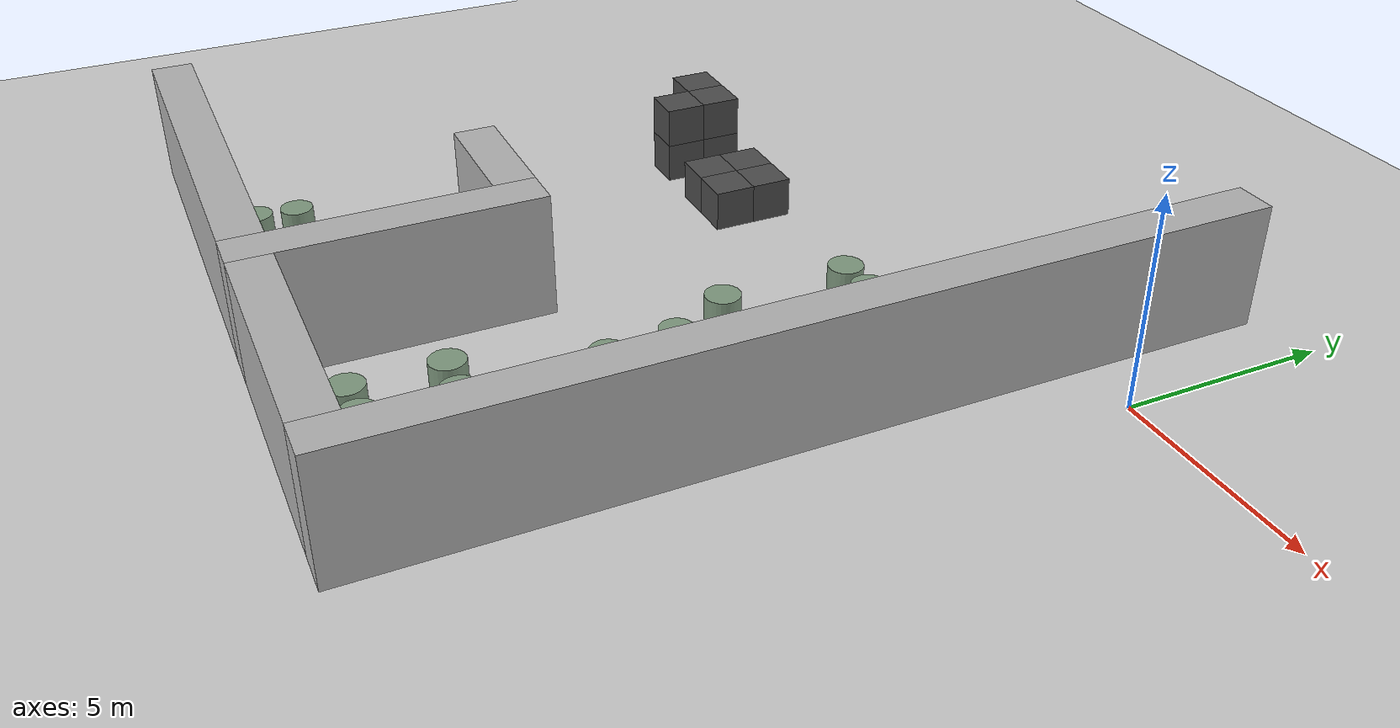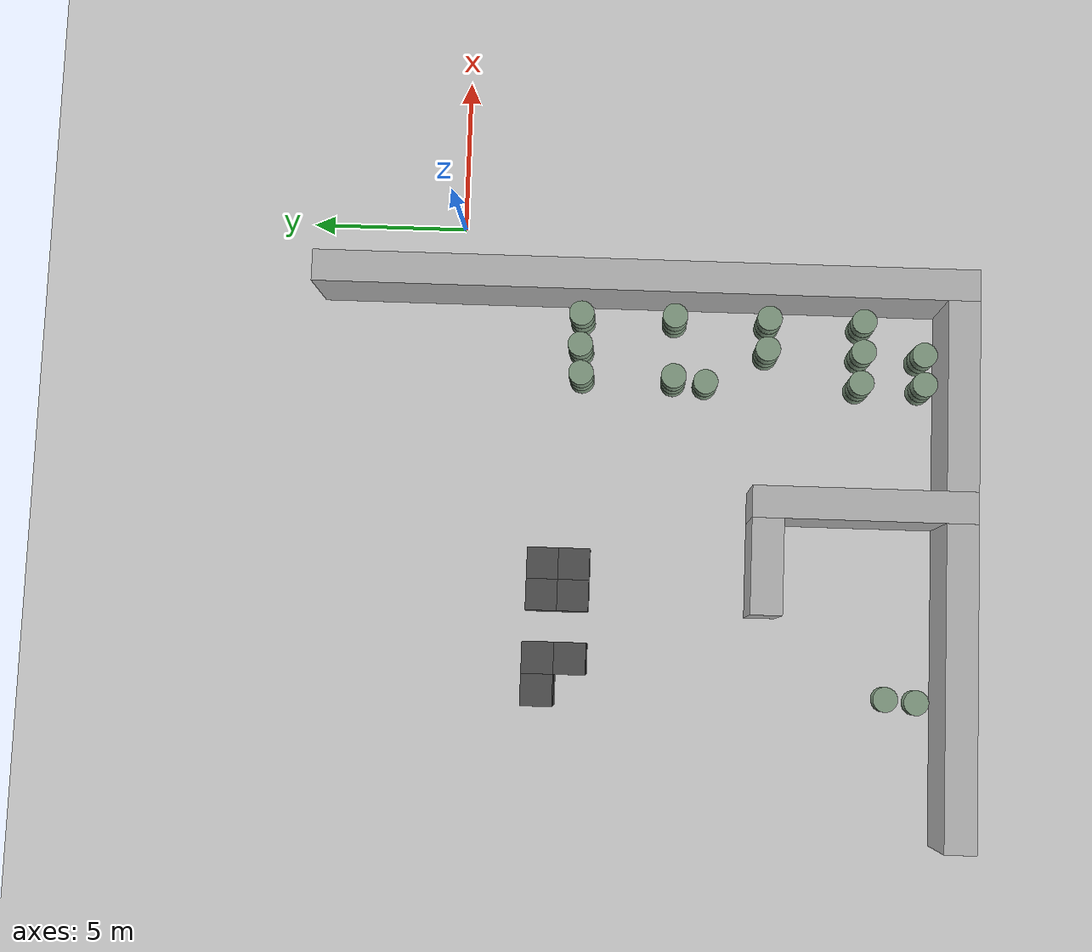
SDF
<sdf version="1.6">
 <world name="default">
  <include><uri>model://ground_plane</uri></include>
  <model name="wall_2">
   <pose>-9.0 -13.0 1.5 0 -0 0</pose>
   <static>True</static>
   <link name="link">
    <inertial>
     <mass>100</mass>
     <inertia>
      <ixx>0.166667</ixx>
      <ixy>0</ixy>
      <ixz>0</ixz>
      <iyy>0.166667</iyy>
      <iyz>0</iyz>
      <izz>0.166667</izz>
     </inertia>
    </inertial>
    <collision name="collision"><geometry><box><size>1.0 7.0 3.0</size></box></geometry></collision>
    <visual name="visual">
     <geometry><box><size>1.0 7.0 3.0</size></box></geometry>
     <material><ambient>0.7 0.7 0.7 1</ambient><diffuse>0.7 0.7 0.7 1</diffuse></material>
    </visual>
   </link>
  </model>
  <model name="wall_4">
   <pose>-2.0 -6.0 1.5 0 -0 0</pose>
   <static>True</static>
   <link name="link">
    <inertial>
     <mass>100</mass>
     <inertia>
      <ixx>0.166667</ixx>
      <ixy>0</ixy>
      <ixz>0</ixz>
      <iyy>0.166667</iyy>
      <iyz>0</iyz>
      <izz>0.166667</izz>
     </inertia>
    </inertial>
    <collision name="collision"><geometry><box><size>1.0 21.0 3.0</size></box></geometry></collision>
    <visual name="visual">
     <geometry><box><size>1.0 21.0 3.0</size></box></geometry>
     <material><ambient>0.7 0.7 0.7 1</ambient><diffuse>0.7 0.7 0.7 1</diffuse></material>
    </visual>
   </link>
  </model>
  <model name="wall_5">
   <pose>-14.5 -16.0 1.5 0 -0 0</pose>
   <static>True</static>
   <link name="link">
    <inertial>
     <mass>100</mass>
     <inertia>
      <ixx>0.166667</ixx>
      <ixy>0</ixy>
      <ixz>0</ixz>
      <iyy>0.166667</iyy>
      <iyz>0</iyz>
      <izz>0.166667</izz>
     </inertia>
    </inertial>
    <collision name="collision"><geometry><box><size>10.0 1.0 3.0</size></box></geometry></collision>
    <visual name="visual">
     <geometry><box><size>10.0 1.0 3.0</size></box></geometry>
     <material><ambient>0.7 0.7 0.7 1</ambient><diffuse>0.7 0.7 0.7 1</diffuse></material>
    </visual>
   </link>
  </model>
  <model name="wall_6">
   <pose>-5.5 -16.0 1.5 0 -0 0</pose>
   <static>True</static>
   <link name="link">
    <inertial>
     <mass>100</mass>
     <inertia>
      <ixx>0.166667</ixx>
      <ixy>0</ixy>
      <ixz>0</ixz>
      <iyy>0.166667</iyy>
      <iyz>0</iyz>
      <izz>0.166667</izz>
     </inertia>
    </inertial>
    <collision name="collision"><geometry><box><size>6.0 1.0 3.0</size></box></geometry></collision>
    <visual name="visual">
     <geometry><box><size>6.0 1.0 3.0</size></box></geometry>
     <material><ambient>0.7 0.7 0.7 1</ambient><diffuse>0.7 0.7 0.7 1</diffuse></material>
    </visual>
   </link>
  </model>
  <model name="wall_8">
   <pose>-11.0 -10.0 1.5 0 -0 0</pose>
   <static>True</static>
   <link name="link">
    <inertial>
     <mass>100</mass>
     <inertia>
      <ixx>0.166667</ixx>
      <ixy>0</ixy>
      <ixz>0</ixz>
      <iyy>0.166667</iyy>
      <iyz>0</iyz>
      <izz>0.166667</izz>
     </inertia>
    </inertial>
    <collision name="collision"><geometry><box><size>3.0 1.0 3.0</size></box></geometry></collision>
    <visual name="visual">
     <geometry><box><size>3.0 1.0 3.0</size></box></geometry>
     <material><ambient>0.7 0.7 0.7 1</ambient><diffuse>0.7 0.7 0.7 1</diffuse></material>
    </visual>
   </link>
  </model>
  <model name="unit_box_30">
   <pose>-15.0 -3.0 0.5 0 -0 0</pose>
   <static>True</static>
   <link name="link">
    <inertial>
     <mass>100</mass>
     <inertia>
      <ixx>0.166667</ixx>
      <ixy>0</ixy>
      <ixz>0</ixz>
      <iyy>0.166667</iyy>
      <iyz>0</iyz>
      <izz>0.166667</izz>
     </inertia>
    </inertial>
    <collision name="collision"><geometry><box><size>1.0 1.0 1.0</size></box></geometry></collision>
    <visual name="visual">
     <geometry><box><size>1.0 1.0 1.0</size></box></geometry>
     <material><ambient>0.3 0.3 0.3 1</ambient><diffuse>0.3 0.3 0.3 1</diffuse></material>
    </visual>
   </link>
  </model>
  <model name="unit_box_31">
   <pose>-15.0 -3.0 1.5 0 -0 0</pose>
   <static>True</static>
   <link name="link">
    <inertial>
     <mass>100</mass>
     <inertia>
      <ixx>0.166667</ixx>
      <ixy>0</ixy>
      <ixz>0</ixz>
      <iyy>0.166667</iyy>
      <iyz>0</iyz>
      <izz>0.166667</izz>
     </inertia>
    </inertial>
    <collision name="collision"><geometry><box><size>1.0 1.0 1.0</size></box></geometry></collision>
    <visual name="visual">
     <geometry><box><size>1.0 1.0 1.0</size></box></geometry>
     <material><ambient>0.3 0.3 0.3 1</ambient><diffuse>0.3 0.3 0.3 1</diffuse></material>
    </visual>
   </link>
  </model>
  <model name="unit_box_38">
   <pose>-14.0 -4.0 0.5 0 -0 0</pose>
   <static>True</static>
   <link name="link">
    <inertial>
     <mass>100</mass>
     <inertia>
      <ixx>0.166667</ixx>
      <ixy>0</ixy>
      <ixz>0</ixz>
      <iyy>0.166667</iyy>
      <iyz>0</iyz>
      <izz>0.166667</izz>
     </inertia>
    </inertial>
    <collision name="collision"><geometry><box><size>1.0 1.0 1.0</size></box></geometry></collision>
    <visual name="visual">
     <geometry><box><size>1.0 1.0 1.0</size></box></geometry>
     <material><ambient>0.3 0.3 0.3 1</ambient><diffuse>0.3 0.3 0.3 1</diffuse></material>
    </visual>
   </link>
  </model>
  <model name="unit_box_39">
   <pose>-14.0 -4.0 1.5 0 -0 0</pose>
   <static>True</static>
   <link name="link">
    <inertial>
     <mass>100</mass>
     <inertia>
      <ixx>0.166667</ixx>
      <ixy>0</ixy>
      <ixz>0</ixz>
      <iyy>0.166667</iyy>
      <iyz>0</iyz>
      <izz>0.166667</izz>
     </inertia>
    </inertial>
    <collision name="collision"><geometry><box><size>1.0 1.0 1.0</size></box></geometry></collision>
    <visual name="visual">
     <geometry><box><size>1.0 1.0 1.0</size></box></geometry>
     <material><ambient>0.3 0.3 0.3 1</ambient><diffuse>0.3 0.3 0.3 1</diffuse></material>
    </visual>
   </link>
  </model>
  <model name="unit_box_40">
   <pose>-14.0 -3.0 0.5 0 -0 0</pose>
   <static>True</static>
   <link name="link">
    <inertial>
     <mass>100</mass>
     <inertia>
      <ixx>0.166667</ixx>
      <ixy>0</ixy>
      <ixz>0</ixz>
      <iyy>0.166667</iyy>
      <iyz>0</iyz>
      <izz>0.166667</izz>
     </inertia>
    </inertial>
    <collision name="collision"><geometry><box><size>1.0 1.0 1.0</size></box></geometry></collision>
    <visual name="visual">
     <geometry><box><size>1.0 1.0 1.0</size></box></geometry>
     <material><ambient>0.3 0.3 0.3 1</ambient><diffuse>0.3 0.3 0.3 1</diffuse></material>
    </visual>
   </link>
  </model>
  <model name="unit_box_41">
   <pose>-14.0 -3.0 1.5 0 -0 0</pose>
   <static>True</static>
   <link name="link">
    <inertial>
     <mass>100</mass>
     <inertia>
      <ixx>0.166667</ixx>
      <ixy>0</ixy>
      <ixz>0</ixz>
      <iyy>0.166667</iyy>
      <iyz>0</iyz>
      <izz>0.166667</izz>
     </inertia>
    </inertial>
    <collision name="collision"><geometry><box><size>1.0 1.0 1.0</size></box></geometry></collision>
    <visual name="visual">
     <geometry><box><size>1.0 1.0 1.0</size></box></geometry>
     <material><ambient>0.3 0.3 0.3 1</ambient><diffuse>0.3 0.3 0.3 1</diffuse></material>
    </visual>
   </link>
  </model>
  <model name="unit_box_48">
   <pose>-12.0 -4.0 0.5 0 -0 0</pose>
   <static>True</static>
   <link name="link">
    <inertial>
     <mass>100</mass>
     <inertia>
      <ixx>0.166667</ixx>
      <ixy>0</ixy>
      <ixz>0</ixz>
      <iyy>0.166667</iyy>
      <iyz>0</iyz>
      <izz>0.166667</izz>
     </inertia>
    </inertial>
    <collision name="collision"><geometry><box><size>1.0 1.0 1.0</size></box></geometry></collision>
    <visual name="visual">
     <geometry><box><size>1.0 1.0 1.0</size></box></geometry>
     <material><ambient>0.3 0.3 0.3 1</ambient><diffuse>0.3 0.3 0.3 1</diffuse></material>
    </visual>
   </link>
  </model>
  <model name="unit_box_49">
   <pose>-12.0 -3.0 0.5 0 -0 0</pose>
   <static>True</static>
   <link name="link">
    <inertial>
     <mass>100</mass>
     <inertia>
      <ixx>0.166667</ixx>
      <ixy>0</ixy>
      <ixz>0</ixz>
      <iyy>0.166667</iyy>
      <iyz>0</iyz>
      <izz>0.166667</izz>
     </inertia>
    </inertial>
    <collision name="collision"><geometry><box><size>1.0 1.0 1.0</size></box></geometry></collision>
    <visual name="visual">
     <geometry><box><size>1.0 1.0 1.0</size></box></geometry>
     <material><ambient>0.3 0.3 0.3 1</ambient><diffuse>0.3 0.3 0.3 1</diffuse></material>
    </visual>
   </link>
  </model>
  <model name="unit_box_53">
   <pose>-11.0 -4.0 0.5 0 -0 0</pose>
   <static>True</static>
   <link name="link">
    <inertial>
     <mass>100</mass>
     <inertia>
      <ixx>0.166667</ixx>
      <ixy>0</ixy>
      <ixz>0</ixz>
      <iyy>0.166667</iyy>
      <iyz>0</iyz>
      <izz>0.166667</izz>
     </inertia>
    </inertial>
    <collision name="collision"><geometry><box><size>1.0 1.0 1.0</size></box></geometry></collision>
    <visual name="visual">
     <geometry><box><size>1.0 1.0 1.0</size></box></geometry>
     <material><ambient>0.3 0.3 0.3 1</ambient><diffuse>0.3 0.3 0.3 1</diffuse></material>
    </visual>
   </link>
  </model>
  <model name="unit_box_54">
   <pose>-11.0 -3.0 0.5 0 -0 0</pose>
   <static>True</static>
   <link name="link">
    <inertial>
     <mass>100</mass>
     <inertia>
      <ixx>0.166667</ixx>
      <ixy>0</ixy>
      <ixz>0</ixz>
      <iyy>0.166667</iyy>
      <iyz>0</iyz>
      <izz>0.166667</izz>
     </inertia>
    </inertial>
    <collision name="collision"><geometry><box><size>1.0 1.0 1.0</size></box></geometry></collision>
    <visual name="visual">
     <geometry><box><size>1.0 1.0 1.0</size></box></geometry>
     <material><ambient>0.3 0.3 0.3 1</ambient><diffuse>0.3 0.3 0.3 1</diffuse></material>
    </visual>
   </link>
  </model>
  <model name="unit_cylinder_39">
   <pose>-15.0357492988 -15.0116066203 0.3 0 -0 0</pose>
   <static>True</static>
   <link name="link">
    <inertial>
     <mass>100</mass>
     <inertia><ixx>0.145833</ixx><ixy>0</ixy><ixz>0</ixz><iyy>0.145833</iyy><iyz>0</iyz><izz>0.125</izz></inertia>
    </inertial>
    <collision name="collision">
     <geometry><cylinder><radius>0.4</radius><length>0.6</length></cylinder></geometry>
     <max_contacts>100</max_contacts>
    </collision>
    <visual name="visual">
     <geometry><cylinder><radius>0.4</radius><length>0.6</length></cylinder></geometry>
     <material><ambient>0.5 0.6 0.5 1</ambient><diffuse>0.5 0.6 0.5 1</diffuse></material>
    </visual>
   </link>
  </model>
  <model name="unit_cylinder_40">
   <pose>-14.9635858038 -14.0262578712 0.3 0 -0 0</pose>
   <static>True</static>
   <link name="link">
    <inertial>
     <mass>100</mass>
     <inertia><ixx>0.145833</ixx><ixy>0</ixy><ixz>0</ixz><iyy>0.145833</iyy><iyz>0</iyz><izz>0.125</izz></inertia>
    </inertial>
    <collision name="collision">
     <geometry><cylinder><radius>0.4</radius><length>0.6</length></cylinder></geometry>
     <max_contacts>100</max_contacts>
    </collision>
    <visual name="visual">
     <geometry><cylinder><radius>0.4</radius><length>0.6</length></cylinder></geometry>
     <material><ambient>0.5 0.6 0.5 1</ambient><diffuse>0.5 0.6 0.5 1</diffuse></material>
    </visual>
   </link>
  </model>
  <model name="unit_cylinder_57">
   <pose>-4.99022781681 -15.0082859557 0.3 0 -0 0</pose>
   <static>True</static>
   <link name="link">
    <inertial>
     <mass>100</mass>
     <inertia><ixx>0.145833</ixx><ixy>0</ixy><ixz>0</ixz><iyy>0.145833</iyy><iyz>0</iyz><izz>0.125</izz></inertia>
    </inertial>
    <collision name="collision">
     <geometry><cylinder><radius>0.4</radius><length>0.6</length></cylinder></geometry>
     <max_contacts>100</max_contacts>
    </collision>
    <visual name="visual">
     <geometry><cylinder><radius>0.4</radius><length>0.6</length></cylinder></geometry>
     <material><ambient>0.5 0.6 0.5 1</ambient><diffuse>0.5 0.6 0.5 1</diffuse></material>
    </visual>
   </link>
  </model>
  <model name="unit_cylinder_58">
   <pose>-4.98264207469 -15.0081033462 0.9 0 -0 0</pose>
   <static>True</static>
   <link name="link">
    <inertial>
     <mass>100</mass>
     <inertia><ixx>0.145833</ixx><ixy>0</ixy><ixz>0</ixz><iyy>0.145833</iyy><iyz>0</iyz><izz>0.125</izz></inertia>
    </inertial>
    <collision name="collision">
     <geometry><cylinder><radius>0.4</radius><length>0.6</length></cylinder></geometry>
     <max_contacts>100</max_contacts>
    </collision>
    <visual name="visual">
     <geometry><cylinder><radius>0.4</radius><length>0.6</length></cylinder></geometry>
     <material><ambient>0.5 0.6 0.5 1</ambient><diffuse>0.5 0.6 0.5 1</diffuse></material>
    </visual>
   </link>
  </model>
  <model name="unit_cylinder_59">
   <pose>-4.99237874595 -14.989779868 1.5 0 -0 0</pose>
   <static>True</static>
   <link name="link">
    <inertial>
     <mass>100</mass>
     <inertia><ixx>0.145833</ixx><ixy>0</ixy><ixz>0</ixz><iyy>0.145833</iyy><iyz>0</iyz><izz>0.125</izz></inertia>
    </inertial>
    <collision name="collision">
     <geometry><cylinder><radius>0.4</radius><length>0.6</length></cylinder></geometry>
     <max_contacts>100</max_contacts>
    </collision>
    <visual name="visual">
     <geometry><cylinder><radius>0.4</radius><length>0.6</length></cylinder></geometry>
     <material><ambient>0.5 0.6 0.5 1</ambient><diffuse>0.5 0.6 0.5 1</diffuse></material>
    </visual>
   </link>
  </model>
  <model name="unit_cylinder_60">
   <pose>-5.01274022086 -12.9683349759 0.3 0 -0 0</pose>
   <static>True</static>
   <link name="link">
    <inertial>
     <mass>100</mass>
     <inertia><ixx>0.145833</ixx><ixy>0</ixy><ixz>0</ixz><iyy>0.145833</iyy><iyz>0</iyz><izz>0.125</izz></inertia>
    </inertial>
    <collision name="collision">
     <geometry><cylinder><radius>0.4</radius><length>0.6</length></cylinder></geometry>
     <max_contacts>100</max_contacts>
    </collision>
    <visual name="visual">
     <geometry><cylinder><radius>0.4</radius><length>0.6</length></cylinder></geometry>
     <material><ambient>0.5 0.6 0.5 1</ambient><diffuse>0.5 0.6 0.5 1</diffuse></material>
    </visual>
   </link>
  </model>
  <model name="unit_cylinder_61">
   <pose>-5.00959643261 -12.9787078498 0.9 0 -0 0</pose>
   <static>True</static>
   <link name="link">
    <inertial>
     <mass>100</mass>
     <inertia><ixx>0.145833</ixx><ixy>0</ixy><ixz>0</ixz><iyy>0.145833</iyy><iyz>0</iyz><izz>0.125</izz></inertia>
    </inertial>
    <collision name="collision">
     <geometry><cylinder><radius>0.4</radius><length>0.6</length></cylinder></geometry>
     <max_contacts>100</max_contacts>
    </collision>
    <visual name="visual">
     <geometry><cylinder><radius>0.4</radius><length>0.6</length></cylinder></geometry>
     <material><ambient>0.5 0.6 0.5 1</ambient><diffuse>0.5 0.6 0.5 1</diffuse></material>
    </visual>
   </link>
  </model>
  <model name="unit_cylinder_62">
   <pose>-5.006700694 -12.9704374892 1.5 0 -0 0</pose>
   <static>True</static>
   <link name="link">
    <inertial>
     <mass>100</mass>
     <inertia><ixx>0.145833</ixx><ixy>0</ixy><ixz>0</ixz><iyy>0.145833</iyy><iyz>0</iyz><izz>0.125</izz></inertia>
    </inertial>
    <collision name="collision">
     <geometry><cylinder><radius>0.4</radius><length>0.6</length></cylinder></geometry>
     <max_contacts>100</max_contacts>
    </collision>
    <visual name="visual">
     <geometry><cylinder><radius>0.4</radius><length>0.6</length></cylinder></geometry>
     <material><ambient>0.5 0.6 0.5 1</ambient><diffuse>0.5 0.6 0.5 1</diffuse></material>
    </visual>
   </link>
  </model>
  <model name="unit_cylinder_63">
   <pose>-5.03310041822 -8.02260262761 0.3 0 -0 0</pose>
   <static>True</static>
   <link name="link">
    <inertial>
     <mass>100</mass>
     <inertia><ixx>0.145833</ixx><ixy>0</ixy><ixz>0</ixz><iyy>0.145833</iyy><iyz>0</iyz><izz>0.125</izz></inertia>
    </inertial>
    <collision name="collision">
     <geometry><cylinder><radius>0.4</radius><length>0.6</length></cylinder></geometry>
     <max_contacts>100</max_contacts>
    </collision>
    <visual name="visual">
     <geometry><cylinder><radius>0.4</radius><length>0.6</length></cylinder></geometry>
     <material><ambient>0.5 0.6 0.5 1</ambient><diffuse>0.5 0.6 0.5 1</diffuse></material>
    </visual>
   </link>
  </model>
  <model name="unit_cylinder_64">
   <pose>-5.02367488973 -8.03439919332 0.9 0 -0 0</pose>
   <static>True</static>
   <link name="link">
    <inertial>
     <mass>100</mass>
     <inertia><ixx>0.145833</ixx><ixy>0</ixy><ixz>0</ixz><iyy>0.145833</iyy><iyz>0</iyz><izz>0.125</izz></inertia>
    </inertial>
    <collision name="collision">
     <geometry><cylinder><radius>0.4</radius><length>0.6</length></cylinder></geometry>
     <max_contacts>100</max_contacts>
    </collision>
    <visual name="visual">
     <geometry><cylinder><radius>0.4</radius><length>0.6</length></cylinder></geometry>
     <material><ambient>0.5 0.6 0.5 1</ambient><diffuse>0.5 0.6 0.5 1</diffuse></material>
    </visual>
   </link>
  </model>
  <model name="unit_cylinder_65">
   <pose>-4.97060192164 -6.99550445476 0.3 0 -0 0</pose>
   <static>True</static>
   <link name="link">
    <inertial>
     <mass>100</mass>
     <inertia><ixx>0.145833</ixx><ixy>0</ixy><ixz>0</ixz><iyy>0.145833</iyy><iyz>0</iyz><izz>0.125</izz></inertia>
    </inertial>
    <collision name="collision">
     <geometry><cylinder><radius>0.4</radius><length>0.6</length></cylinder></geometry>
     <max_contacts>100</max_contacts>
    </collision>
    <visual name="visual">
     <geometry><cylinder><radius>0.4</radius><length>0.6</length></cylinder></geometry>
     <material><ambient>0.5 0.6 0.5 1</ambient><diffuse>0.5 0.6 0.5 1</diffuse></material>
    </visual>
   </link>
  </model>
  <model name="unit_cylinder_66">
   <pose>-4.97355836718 -6.9857817617 0.9 0 -0 0</pose>
   <static>True</static>
   <link name="link">
    <inertial>
     <mass>100</mass>
     <inertia><ixx>0.145833</ixx><ixy>0</ixy><ixz>0</ixz><iyy>0.145833</iyy><iyz>0</iyz><izz>0.125</izz></inertia>
    </inertial>
    <collision name="collision">
     <geometry><cylinder><radius>0.4</radius><length>0.6</length></cylinder></geometry>
     <max_contacts>100</max_contacts>
    </collision>
    <visual name="visual">
     <geometry><cylinder><radius>0.4</radius><length>0.6</length></cylinder></geometry>
     <material><ambient>0.5 0.6 0.5 1</ambient><diffuse>0.5 0.6 0.5 1</diffuse></material>
    </visual>
   </link>
  </model>
  <model name="unit_cylinder_67">
   <pose>-4.96799819167 -6.99186592104 1.5 0 -0 0</pose>
   <static>True</static>
   <link name="link">
    <inertial>
     <mass>100</mass>
     <inertia><ixx>0.145833</ixx><ixy>0</ixy><ixz>0</ixz><iyy>0.145833</iyy><iyz>0</iyz><izz>0.125</izz></inertia>
    </inertial>
    <collision name="collision">
     <geometry><cylinder><radius>0.4</radius><length>0.6</length></cylinder></geometry>
     <max_contacts>100</max_contacts>
    </collision>
    <visual name="visual">
     <geometry><cylinder><radius>0.4</radius><length>0.6</length></cylinder></geometry>
     <material><ambient>0.5 0.6 0.5 1</ambient><diffuse>0.5 0.6 0.5 1</diffuse></material>
    </visual>
   </link>
  </model>
  <model name="unit_cylinder_68">
   <pose>-4.95438790647 -4.03874121835 0.3 0 -0 0</pose>
   <static>True</static>
   <link name="link">
    <inertial>
     <mass>100</mass>
     <inertia><ixx>0.145833</ixx><ixy>0</ixy><ixz>0</ixz><iyy>0.145833</iyy><iyz>0</iyz><izz>0.125</izz></inertia>
    </inertial>
    <collision name="collision">
     <geometry><cylinder><radius>0.4</radius><length>0.6</length></cylinder></geometry>
     <max_contacts>100</max_contacts>
    </collision>
    <visual name="visual">
     <geometry><cylinder><radius>0.4</radius><length>0.6</length></cylinder></geometry>
     <material><ambient>0.5 0.6 0.5 1</ambient><diffuse>0.5 0.6 0.5 1</diffuse></material>
    </visual>
   </link>
  </model>
  <model name="unit_cylinder_69">
   <pose>-4.95744153849 -4.03085200687 0.9 0 -0 0</pose>
   <static>True</static>
   <link name="link">
    <inertial>
     <mass>100</mass>
     <inertia><ixx>0.145833</ixx><ixy>0</ixy><ixz>0</ixz><iyy>0.145833</iyy><iyz>0</iyz><izz>0.125</izz></inertia>
    </inertial>
    <collision name="collision">
     <geometry><cylinder><radius>0.4</radius><length>0.6</length></cylinder></geometry>
     <max_contacts>100</max_contacts>
    </collision>
    <visual name="visual">
     <geometry><cylinder><radius>0.4</radius><length>0.6</length></cylinder></geometry>
     <material><ambient>0.5 0.6 0.5 1</ambient><diffuse>0.5 0.6 0.5 1</diffuse></material>
    </visual>
   </link>
  </model>
  <model name="unit_cylinder_70">
   <pose>-4.95815382566 -4.03278298915 1.5 0 -0 0</pose>
   <static>True</static>
   <link name="link">
    <inertial>
     <mass>100</mass>
     <inertia><ixx>0.145833</ixx><ixy>0</ixy><ixz>0</ixz><iyy>0.145833</iyy><iyz>0</iyz><izz>0.125</izz></inertia>
    </inertial>
    <collision name="collision">
     <geometry><cylinder><radius>0.4</radius><length>0.6</length></cylinder></geometry>
     <max_contacts>100</max_contacts>
    </collision>
    <visual name="visual">
     <geometry><cylinder><radius>0.4</radius><length>0.6</length></cylinder></geometry>
     <material><ambient>0.5 0.6 0.5 1</ambient><diffuse>0.5 0.6 0.5 1</diffuse></material>
    </visual>
   </link>
  </model>
  <model name="unit_cylinder_98">
   <pose>-4.02943517905 -14.9555499219 0.3 0 -0 0</pose>
   <static>True</static>
   <link name="link">
    <inertial>
     <mass>100</mass>
     <inertia><ixx>0.145833</ixx><ixy>0</ixy><ixz>0</ixz><iyy>0.145833</iyy><iyz>0</iyz><izz>0.125</izz></inertia>
    </inertial>
    <collision name="collision">
     <geometry><cylinder><radius>0.4</radius><length>0.6</length></cylinder></geometry>
     <max_contacts>100</max_contacts>
    </collision>
    <visual name="visual">
     <geometry><cylinder><radius>0.4</radius><length>0.6</length></cylinder></geometry>
     <material><ambient>0.5 0.6 0.5 1</ambient><diffuse>0.5 0.6 0.5 1</diffuse></material>
    </visual>
   </link>
  </model>
  <model name="unit_cylinder_99">
   <pose>-4.02735900881 -14.9692180408 0.9 0 -0 0</pose>
   <static>True</static>
   <link name="link">
    <inertial>
     <mass>100</mass>
     <inertia><ixx>0.145833</ixx><ixy>0</ixy><ixz>0</ixz><iyy>0.145833</iyy><iyz>0</iyz><izz>0.125</izz></inertia>
    </inertial>
    <collision name="collision">
     <geometry><cylinder><radius>0.4</radius><length>0.6</length></cylinder></geometry>
     <max_contacts>100</max_contacts>
    </collision>
    <visual name="visual">
     <geometry><cylinder><radius>0.4</radius><length>0.6</length></cylinder></geometry>
     <material><ambient>0.5 0.6 0.5 1</ambient><diffuse>0.5 0.6 0.5 1</diffuse></material>
    </visual>
   </link>
  </model>
  <model name="unit_cylinder_100">
   <pose>-4.04373564406 -14.970563125 1.5 0 -0 0</pose>
   <static>True</static>
   <link name="link">
    <inertial>
     <mass>100</mass>
     <inertia><ixx>0.145833</ixx><ixy>0</ixy><ixz>0</ixz><iyy>0.145833</iyy><iyz>0</iyz><izz>0.125</izz></inertia>
    </inertial>
    <collision name="collision">
     <geometry><cylinder><radius>0.4</radius><length>0.6</length></cylinder></geometry>
     <max_contacts>100</max_contacts>
    </collision>
    <visual name="visual">
     <geometry><cylinder><radius>0.4</radius><length>0.6</length></cylinder></geometry>
     <material><ambient>0.5 0.6 0.5 1</ambient><diffuse>0.5 0.6 0.5 1</diffuse></material>
    </visual>
   </link>
  </model>
  <model name="unit_cylinder_101">
   <pose>-4.00782806849 -13.018269628 0.3 0 -0 0</pose>
   <static>True</static>
   <link name="link">
    <inertial>
     <mass>100</mass>
     <inertia><ixx>0.145833</ixx><ixy>0</ixy><ixz>0</ixz><iyy>0.145833</iyy><iyz>0</iyz><izz>0.125</izz></inertia>
    </inertial>
    <collision name="collision">
     <geometry><cylinder><radius>0.4</radius><length>0.6</length></cylinder></geometry>
     <max_contacts>100</max_contacts>
    </collision>
    <visual name="visual">
     <geometry><cylinder><radius>0.4</radius><length>0.6</length></cylinder></geometry>
     <material><ambient>0.5 0.6 0.5 1</ambient><diffuse>0.5 0.6 0.5 1</diffuse></material>
    </visual>
   </link>
  </model>
  <model name="unit_cylinder_102">
   <pose>-4.01021854554 -13.0210120851 0.9 0 -0 0</pose>
   <static>True</static>
   <link name="link">
    <inertial>
     <mass>100</mass>
     <inertia><ixx>0.145833</ixx><ixy>0</ixy><ixz>0</ixz><iyy>0.145833</iyy><iyz>0</iyz><izz>0.125</izz></inertia>
    </inertial>
    <collision name="collision">
     <geometry><cylinder><radius>0.4</radius><length>0.6</length></cylinder></geometry>
     <max_contacts>100</max_contacts>
    </collision>
    <visual name="visual">
     <geometry><cylinder><radius>0.4</radius><length>0.6</length></cylinder></geometry>
     <material><ambient>0.5 0.6 0.5 1</ambient><diffuse>0.5 0.6 0.5 1</diffuse></material>
    </visual>
   </link>
  </model>
  <model name="unit_cylinder_103">
   <pose>-4.00349671794 -13.0326006872 1.5 0 -0 0</pose>
   <static>True</static>
   <link name="link">
    <inertial>
     <mass>100</mass>
     <inertia><ixx>0.145833</ixx><ixy>0</ixy><ixz>0</ixz><iyy>0.145833</iyy><iyz>0</iyz><izz>0.125</izz></inertia>
    </inertial>
    <collision name="collision">
     <geometry><cylinder><radius>0.4</radius><length>0.6</length></cylinder></geometry>
     <max_contacts>100</max_contacts>
    </collision>
    <visual name="visual">
     <geometry><cylinder><radius>0.4</radius><length>0.6</length></cylinder></geometry>
     <material><ambient>0.5 0.6 0.5 1</ambient><diffuse>0.5 0.6 0.5 1</diffuse></material>
    </visual>
   </link>
  </model>
  <model name="unit_cylinder_104">
   <pose>-3.99170591623 -9.98025176662 0.3 0 -0 0</pose>
   <static>True</static>
   <link name="link">
    <inertial>
     <mass>100</mass>
     <inertia><ixx>0.145833</ixx><ixy>0</ixy><ixz>0</ixz><iyy>0.145833</iyy><iyz>0</iyz><izz>0.125</izz></inertia>
    </inertial>
    <collision name="collision">
     <geometry><cylinder><radius>0.4</radius><length>0.6</length></cylinder></geometry>
     <max_contacts>100</max_contacts>
    </collision>
    <visual name="visual">
     <geometry><cylinder><radius>0.4</radius><length>0.6</length></cylinder></geometry>
     <material><ambient>0.5 0.6 0.5 1</ambient><diffuse>0.5 0.6 0.5 1</diffuse></material>
    </visual>
   </link>
  </model>
  <model name="unit_cylinder_105">
   <pose>-3.99958585464 -9.97363918223 0.9 0 -0 0</pose>
   <static>True</static>
   <link name="link">
    <inertial>
     <mass>100</mass>
     <inertia><ixx>0.145833</ixx><ixy>0</ixy><ixz>0</ixz><iyy>0.145833</iyy><iyz>0</iyz><izz>0.125</izz></inertia>
    </inertial>
    <collision name="collision">
     <geometry><cylinder><radius>0.4</radius><length>0.6</length></cylinder></geometry>
     <max_contacts>100</max_contacts>
    </collision>
    <visual name="visual">
     <geometry><cylinder><radius>0.4</radius><length>0.6</length></cylinder></geometry>
     <material><ambient>0.5 0.6 0.5 1</ambient><diffuse>0.5 0.6 0.5 1</diffuse></material>
    </visual>
   </link>
  </model>
  <model name="unit_cylinder_106">
   <pose>-4.00081921793 -9.97878903382 1.5 0 -0 0</pose>
   <static>True</static>
   <link name="link">
    <inertial>
     <mass>100</mass>
     <inertia><ixx>0.145833</ixx><ixy>0</ixy><ixz>0</ixz><iyy>0.145833</iyy><iyz>0</iyz><izz>0.125</izz></inertia>
    </inertial>
    <collision name="collision">
     <geometry><cylinder><radius>0.4</radius><length>0.6</length></cylinder></geometry>
     <max_contacts>100</max_contacts>
    </collision>
    <visual name="visual">
     <geometry><cylinder><radius>0.4</radius><length>0.6</length></cylinder></geometry>
     <material><ambient>0.5 0.6 0.5 1</ambient><diffuse>0.5 0.6 0.5 1</diffuse></material>
    </visual>
   </link>
  </model>
  <model name="unit_cylinder_107">
   <pose>-4.03598726145 -3.98896394694 0.3 0 -0 0</pose>
   <static>True</static>
   <link name="link">
    <inertial>
     <mass>100</mass>
     <inertia><ixx>0.145833</ixx><ixy>0</ixy><ixz>0</ixz><iyy>0.145833</iyy><iyz>0</iyz><izz>0.125</izz></inertia>
    </inertial>
    <collision name="collision">
     <geometry><cylinder><radius>0.4</radius><length>0.6</length></cylinder></geometry>
     <max_contacts>100</max_contacts>
    </collision>
    <visual name="visual">
     <geometry><cylinder><radius>0.4</radius><length>0.6</length></cylinder></geometry>
     <material><ambient>0.5 0.6 0.5 1</ambient><diffuse>0.5 0.6 0.5 1</diffuse></material>
    </visual>
   </link>
  </model>
  <model name="unit_cylinder_108">
   <pose>-4.03836667906 -3.97883953262 0.9 0 -0 0</pose>
   <static>True</static>
   <link name="link">
    <inertial>
     <mass>100</mass>
     <inertia><ixx>0.145833</ixx><ixy>0</ixy><ixz>0</ixz><iyy>0.145833</iyy><iyz>0</iyz><izz>0.125</izz></inertia>
    </inertial>
    <collision name="collision">
     <geometry><cylinder><radius>0.4</radius><length>0.6</length></cylinder></geometry>
     <max_contacts>100</max_contacts>
    </collision>
    <visual name="visual">
     <geometry><cylinder><radius>0.4</radius><length>0.6</length></cylinder></geometry>
     <material><ambient>0.5 0.6 0.5 1</ambient><diffuse>0.5 0.6 0.5 1</diffuse></material>
    </visual>
   </link>
  </model>
  <model name="unit_cylinder_109">
   <pose>-4.03560511802 -3.98130867313 1.5 0 -0 0</pose>
   <static>True</static>
   <link name="link">
    <inertial>
     <mass>100</mass>
     <inertia><ixx>0.145833</ixx><ixy>0</ixy><ixz>0</ixz><iyy>0.145833</iyy><iyz>0</iyz><izz>0.125</izz></inertia>
    </inertial>
    <collision name="collision">
     <geometry><cylinder><radius>0.4</radius><length>0.6</length></cylinder></geometry>
     <max_contacts>100</max_contacts>
    </collision>
    <visual name="visual">
     <geometry><cylinder><radius>0.4</radius><length>0.6</length></cylinder></geometry>
     <material><ambient>0.5 0.6 0.5 1</ambient><diffuse>0.5 0.6 0.5 1</diffuse></material>
    </visual>
   </link>
  </model>
  <model name="unit_cylinder_137">
   <pose>-3.0190860236 -13.0308720686 0.3 0 -0 0</pose>
   <static>True</static>
   <link name="link">
    <inertial>
     <mass>100</mass>
     <inertia><ixx>0.145833</ixx><ixy>0</ixy><ixz>0</ixz><iyy>0.145833</iyy><iyz>0</iyz><izz>0.125</izz></inertia>
    </inertial>
    <collision name="collision">
     <geometry><cylinder><radius>0.4</radius><length>0.6</length></cylinder></geometry>
     <max_contacts>100</max_contacts>
    </collision>
    <visual name="visual">
     <geometry><cylinder><radius>0.4</radius><length>0.6</length></cylinder></geometry>
     <material><ambient>0.5 0.6 0.5 1</ambient><diffuse>0.5 0.6 0.5 1</diffuse></material>
    </visual>
   </link>
  </model>
  <model name="unit_cylinder_138">
   <pose>-3.03049185514 -13.0466093591 0.9 0 -0 0</pose>
   <static>True</static>
   <link name="link">
    <inertial>
     <mass>100</mass>
     <inertia><ixx>0.145833</ixx><ixy>0</ixy><ixz>0</ixz><iyy>0.145833</iyy><iyz>0</iyz><izz>0.125</izz></inertia>
    </inertial>
    <collision name="collision">
     <geometry><cylinder><radius>0.4</radius><length>0.6</length></cylinder></geometry>
     <max_contacts>100</max_contacts>
    </collision>
    <visual name="visual">
     <geometry><cylinder><radius>0.4</radius><length>0.6</length></cylinder></geometry>
     <material><ambient>0.5 0.6 0.5 1</ambient><diffuse>0.5 0.6 0.5 1</diffuse></material>
    </visual>
   </link>
  </model>
  <model name="unit_cylinder_139">
   <pose>-3.01997524678 -13.0371985576 1.5 0 -0 0</pose>
   <static>True</static>
   <link name="link">
    <inertial>
     <mass>100</mass>
     <inertia><ixx>0.145833</ixx><ixy>0</ixy><ixz>0</ixz><iyy>0.145833</iyy><iyz>0</iyz><izz>0.125</izz></inertia>
    </inertial>
    <collision name="collision">
     <geometry><cylinder><radius>0.4</radius><length>0.6</length></cylinder></geometry>
     <max_contacts>100</max_contacts>
    </collision>
    <visual name="visual">
     <geometry><cylinder><radius>0.4</radius><length>0.6</length></cylinder></geometry>
     <material><ambient>0.5 0.6 0.5 1</ambient><diffuse>0.5 0.6 0.5 1</diffuse></material>
    </visual>
   </link>
  </model>
  <model name="unit_cylinder_140">
   <pose>-3.02099449847 -10.0044663569 0.3 0 -0 0</pose>
   <static>True</static>
   <link name="link">
    <inertial>
     <mass>100</mass>
     <inertia><ixx>0.145833</ixx><ixy>0</ixy><ixz>0</ixz><iyy>0.145833</iyy><iyz>0</iyz><izz>0.125</izz></inertia>
    </inertial>
    <collision name="collision">
     <geometry><cylinder><radius>0.4</radius><length>0.6</length></cylinder></geometry>
     <max_contacts>100</max_contacts>
    </collision>
    <visual name="visual">
     <geometry><cylinder><radius>0.4</radius><length>0.6</length></cylinder></geometry>
     <material><ambient>0.5 0.6 0.5 1</ambient><diffuse>0.5 0.6 0.5 1</diffuse></material>
    </visual>
   </link>
  </model>
  <model name="unit_cylinder_141">
   <pose>-3.02549134665 -10.0120871328 0.9 0 -0 0</pose>
   <static>True</static>
   <link name="link">
    <inertial>
     <mass>100</mass>
     <inertia><ixx>0.145833</ixx><ixy>0</ixy><ixz>0</ixz><iyy>0.145833</iyy><iyz>0</iyz><izz>0.125</izz></inertia>
    </inertial>
    <collision name="collision">
     <geometry><cylinder><radius>0.4</radius><length>0.6</length></cylinder></geometry>
     <max_contacts>100</max_contacts>
    </collision>
    <visual name="visual">
     <geometry><cylinder><radius>0.4</radius><length>0.6</length></cylinder></geometry>
     <material><ambient>0.5 0.6 0.5 1</ambient><diffuse>0.5 0.6 0.5 1</diffuse></material>
    </visual>
   </link>
  </model>
  <model name="unit_cylinder_142">
   <pose>-3.00877070629 -10.0114835733 1.5 0 -0 0</pose>
   <static>True</static>
   <link name="link">
    <inertial>
     <mass>100</mass>
     <inertia><ixx>0.145833</ixx><ixy>0</ixy><ixz>0</ixz><iyy>0.145833</iyy><iyz>0</iyz><izz>0.125</izz></inertia>
    </inertial>
    <collision name="collision">
     <geometry><cylinder><radius>0.4</radius><length>0.6</length></cylinder></geometry>
     <max_contacts>100</max_contacts>
    </collision>
    <visual name="visual">
     <geometry><cylinder><radius>0.4</radius><length>0.6</length></cylinder></geometry>
     <material><ambient>0.5 0.6 0.5 1</ambient><diffuse>0.5 0.6 0.5 1</diffuse></material>
    </visual>
   </link>
  </model>
  <model name="unit_cylinder_143">
   <pose>-3.00666257345 -6.99286273923 0.3 0 -0 0</pose>
   <static>True</static>
   <link name="link">
    <inertial>
     <mass>100</mass>
     <inertia><ixx>0.145833</ixx><ixy>0</ixy><ixz>0</ixz><iyy>0.145833</iyy><iyz>0</iyz><izz>0.125</izz></inertia>
    </inertial>
    <collision name="collision">
     <geometry><cylinder><radius>0.4</radius><length>0.6</length></cylinder></geometry>
     <max_contacts>100</max_contacts>
    </collision>
    <visual name="visual">
     <geometry><cylinder><radius>0.4</radius><length>0.6</length></cylinder></geometry>
     <material><ambient>0.5 0.6 0.5 1</ambient><diffuse>0.5 0.6 0.5 1</diffuse></material>
    </visual>
   </link>
  </model>
  <model name="unit_cylinder_144">
   <pose>-3.01385900014 -6.98427374189 0.9 0 -0 0</pose>
   <static>True</static>
   <link name="link">
    <inertial>
     <mass>100</mass>
     <inertia><ixx>0.145833</ixx><ixy>0</ixy><ixz>0</ixz><iyy>0.145833</iyy><iyz>0</iyz><izz>0.125</izz></inertia>
    </inertial>
    <collision name="collision">
     <geometry><cylinder><radius>0.4</radius><length>0.6</length></cylinder></geometry>
     <max_contacts>100</max_contacts>
    </collision>
    <visual name="visual">
     <geometry><cylinder><radius>0.4</radius><length>0.6</length></cylinder></geometry>
     <material><ambient>0.5 0.6 0.5 1</ambient><diffuse>0.5 0.6 0.5 1</diffuse></material>
    </visual>
   </link>
  </model>
  <model name="unit_cylinder_145">
   <pose>-3.01934010199 -6.98897856472 1.5 0 -0 0</pose>
   <static>True</static>
   <link name="link">
    <inertial>
     <mass>100</mass>
     <inertia><ixx>0.145833</ixx><ixy>0</ixy><ixz>0</ixz><iyy>0.145833</iyy><iyz>0</iyz><izz>0.125</izz></inertia>
    </inertial>
    <collision name="collision">
     <geometry><cylinder><radius>0.4</radius><length>0.6</length></cylinder></geometry>
     <max_contacts>100</max_contacts>
    </collision>
    <visual name="visual">
     <geometry><cylinder><radius>0.4</radius><length>0.6</length></cylinder></geometry>
     <material><ambient>0.5 0.6 0.5 1</ambient><diffuse>0.5 0.6 0.5 1</diffuse></material>
    </visual>
   </link>
  </model>
  <model name="unit_cylinder_146">
   <pose>-3.03335339372 -4.00514283927 0.3 0 -0 0</pose>
   <static>True</static>
   <link name="link">
    <inertial>
     <mass>100</mass>
     <inertia><ixx>0.145833</ixx><ixy>0</ixy><ixz>0</ixz><iyy>0.145833</iyy><iyz>0</iyz><izz>0.125</izz></inertia>
    </inertial>
    <collision name="collision">
     <geometry><cylinder><radius>0.4</radius><length>0.6</length></cylinder></geometry>
     <max_contacts>100</max_contacts>
    </collision>
    <visual name="visual">
     <geometry><cylinder><radius>0.4</radius><length>0.6</length></cylinder></geometry>
     <material><ambient>0.5 0.6 0.5 1</ambient><diffuse>0.5 0.6 0.5 1</diffuse></material>
    </visual>
   </link>
  </model>
  <model name="unit_cylinder_147">
   <pose>-3.03088128658 -4.00879307424 0.9 0 -0 0</pose>
   <static>True</static>
   <link name="link">
    <inertial>
     <mass>100</mass>
     <inertia><ixx>0.145833</ixx><ixy>0</ixy><ixz>0</ixz><iyy>0.145833</iyy><iyz>0</iyz><izz>0.125</izz></inertia>
    </inertial>
    <collision name="collision">
     <geometry><cylinder><radius>0.4</radius><length>0.6</length></cylinder></geometry>
     <max_contacts>100</max_contacts>
    </collision>
    <visual name="visual">
     <geometry><cylinder><radius>0.4</radius><length>0.6</length></cylinder></geometry>
     <material><ambient>0.5 0.6 0.5 1</ambient><diffuse>0.5 0.6 0.5 1</diffuse></material>
    </visual>
   </link>
  </model>
  <model name="unit_cylinder_148">
   <pose>-3.03278531895 -3.99175936592 1.5 0 -0 0</pose>
   <static>True</static>
   <link name="link">
    <inertial>
     <mass>100</mass>
     <inertia><ixx>0.145833</ixx><ixy>0</ixy><ixz>0</ixz><iyy>0.145833</iyy><iyz>0</iyz><izz>0.125</izz></inertia>
    </inertial>
    <collision name="collision">
     <geometry><cylinder><radius>0.4</radius><length>0.6</length></cylinder></geometry>
     <max_contacts>100</max_contacts>
    </collision>
    <visual name="visual">
     <geometry><cylinder><radius>0.4</radius><length>0.6</length></cylinder></geometry>
     <material><ambient>0.5 0.6 0.5 1</ambient><diffuse>0.5 0.6 0.5 1</diffuse></material>
    </visual>
   </link>
  </model>
 </world>
</sdf>
